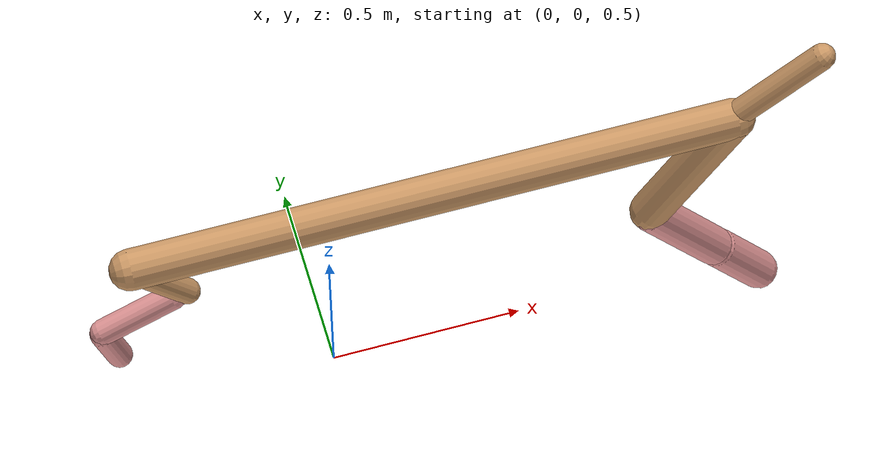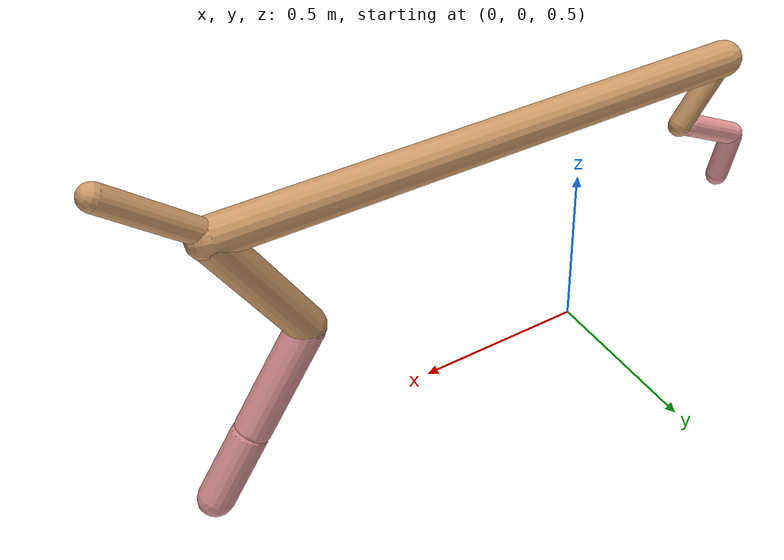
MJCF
<mujoco model="cheetah">
  <compiler angle="radian" coordinate="local" inertiafromgeom="true" settotalmass="14" />
  <default>
    <joint armature=".1" damping=".01" limited="true" solimplimit="0 .8 .03" solreflimit=".02 1" stiffness="8" />
    <geom conaffinity="0" condim="3" contype="1" friction="0.8 .1 .1" rgba="0.8 0.6 .4 1" solimp="0.0 0.8 0.01" solref="0.02 1" />
    <motor ctrllimited="true" ctrlrange="-1 1" />
  </default>
  <size nstack="300000" nuser_geom="1" />
  <option gravity="0 0 -9.81" timestep="0.01" />
  <worldbody>
    <body name="torso" pos="0.0 0.0 1.2228067132375444">
      <joint armature="0" axis="1 0 0" damping="0" limited="false" name="ignorex" pos="0 0 0" stiffness="0" type="slide" />
      <joint armature="0" axis="0 0 1" damping="0" limited="false" name="ignorez" pos="0 0 0" stiffness="0" type="slide" />
      <joint armature="0" axis="0 1 0" damping="0" limited="false" name="ignorey" pos="0 0 0" stiffness="0" type="hinge" />
      <geom fromto="-0.5 0.0 0.0 1.0529904130761352 0.0 0.0" name="torso" size="0.05242421065782187" type="capsule" />
      <geom axisangle="0 1 0 .87" name="head" pos="1.152990413076135 0.0 0.1" size="0.033944482831161304 0.15" type="capsule" />

      <body name="bthigh" pos="-.5 0 0">
        <joint axis="0 1 0" damping="6" name="bthigh" pos="0 0 0" range="-.52 1.05" stiffness="240" type="hinge" />
        <geom axisangle="0 1 0 -3.8" name="bthigh" pos="0.0734775819030384 0.0 -0.0955208564739499" size="0.03340276495995695 0.10149999999999999" type="capsule" />
        <body name="bshin" pos="0.10695516380607678 0.0 -0.18104171294789978">
          <joint axis="0 1 0" damping="4.5" name="bshin" pos="0 0 0" range="-.785 .785" stiffness="180" type="hinge" />
          <geom axisangle="0 1 0 -2.03" name="bshin" pos="-0.0997507764050038 0.0 -0.0498753882025019" rgba="0.9 0.6 0.6 1" size="0.03340276495995695 0.105" type="capsule" />
          <body name="bfoot" pos="-0.1995015528100076 0.0 -0.0997507764050038">
            <joint axis="0 1 0" damping="3" name="bfoot" pos="0 0 0" range="-.4 .785" stiffness="120" type="hinge" />
            <geom axisangle="0 1 0 -.27" name="bfoot" pos="0.021667753813597694 0.0 -0.07005907066396588" rgba="0.9 0.6 0.6 1" size="0.03340276495995695 0.0658" type="capsule" />
            <inertial mass="10" />
          </body>
        </body>
      </body>
      <body name="fthigh" pos="1.0529904130761352 0.0 0.0">
        <joint axis="0 1 0" damping="4.5" name="fthigh" pos="0 0 0" range="-1.5 0.8" stiffness="180" type="hinge" />
        <geom axisangle="0 1 0 .52" name="fthigh" pos="-0.10664833847461698 0.0 -0.18282572309934336" size="0.051781539415942913 0.20573356993785924" type="capsule" />
        <body name="fshin" pos="-0.21329667694923396 0.0 -0.3656514461986867">
          <joint axis="0 1 0" damping="3" name="fshin" pos="0 0 0" range="-1.2 1.1" stiffness="120" type="hinge" />
          <geom axisangle="0 1 0 -.6" name="fshin" pos="0.09893977987575509 0.0 -0.1369935413664301" rgba="0.9 0.6 0.6 1" size="0.051781539415942913 0.1639681083715269" type="capsule" />
          <body name="ffoot" pos="0.19787955975151017 0.0 -0.2739870827328602">
            <joint axis="0 1 0" damping="1.5" name="ffoot" pos="0 0 0" range="-3.1 -0.3" stiffness="60" type="hinge" />
            <geom axisangle="0 1 0 -.6" name="ffoot" pos="0.06570064741433088 0.0 -0.10220100708895914" rgba="0.9 0.6 0.6 1" size="0.051781539415942913 0.10828082628308382" type="capsule" />
            <inertial mass="10" />
          </body>
        </body>
      </body>
    </body>
  </worldbody>
  <actuator>
    <motor gear="120" joint="bthigh" name="bthigh" />
    <motor gear="90" joint="bshin" name="bshin" />
    <motor gear="60" joint="bfoot" name="bfoot" />
    <motor gear="120" joint="fthigh" name="fthigh" />
    <motor gear="60" joint="fshin" name="fshin" />
    <motor gear="30" joint="ffoot" name="ffoot" />
  </actuator>
</mujoco>
